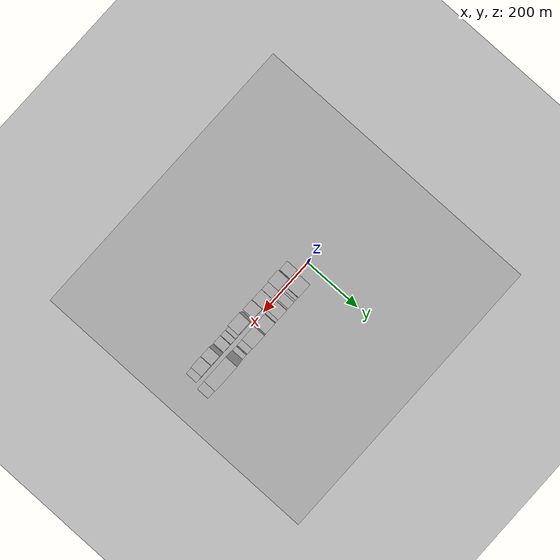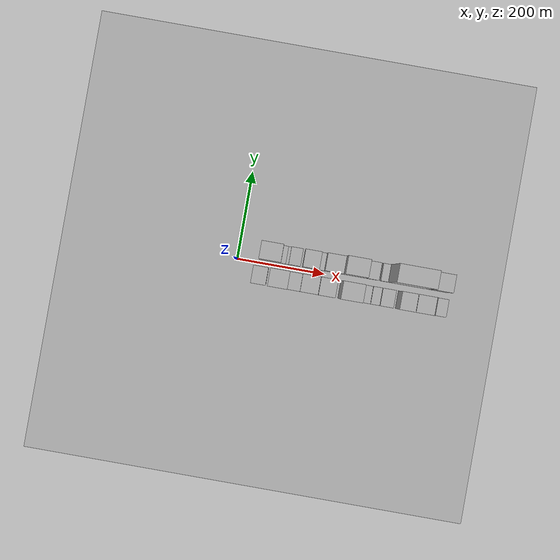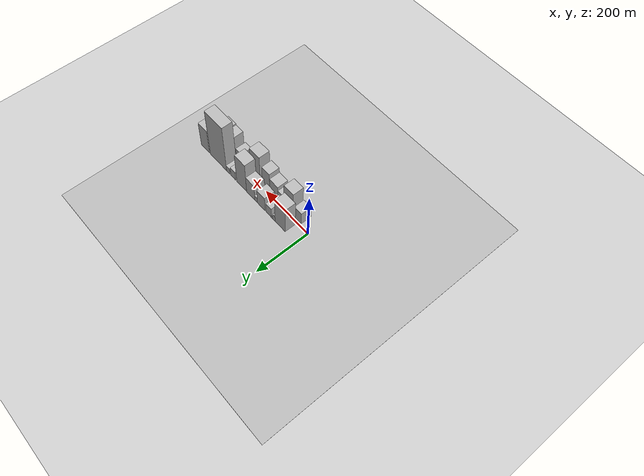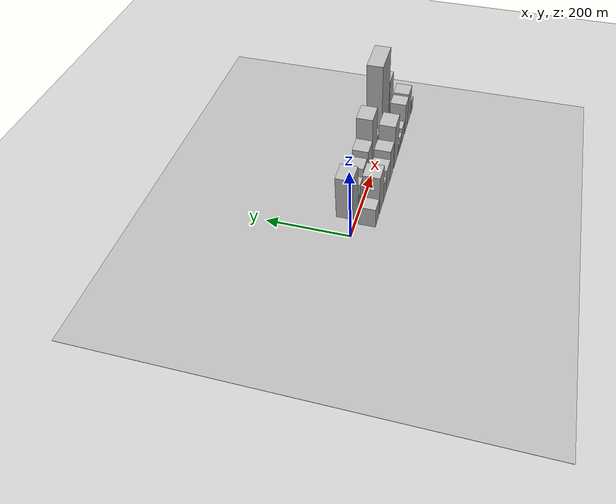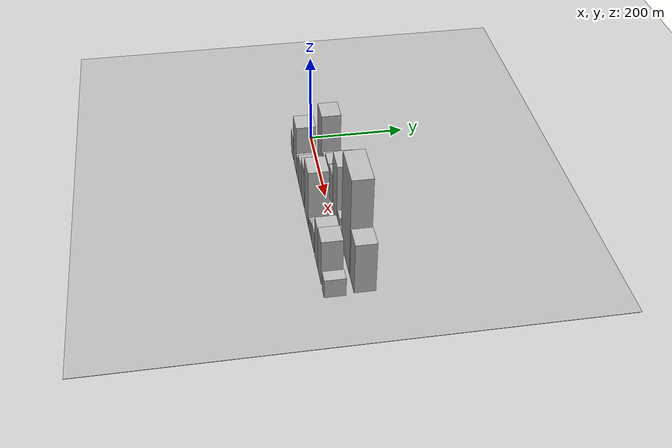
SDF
<?xml version="1.0" encoding="utf-8"?>

<sdf version="1.6">

   <world name="default">

      <gui fullscreen="0">

         <camera name="user_camera">

            <pose>-15 0 4.57585 0 0 0</pose>

            <view_controller>orbit</view_controller>

         </camera>

      </gui>

      <scene>

         <sky>

           <clouds>

             <speed>12</speed>

           </clouds>

         </sky>

         <ambient>0.4 0.4 0.4 1</ambient>

         <background>0.7 0.7 0.7 1</background>

         <shadows>1</shadows>

      </scene>

      <gravity>0 0 -9.8066</gravity>

      <magnetic_field>6e-06 2.3e-05 -4.2e-05</magnetic_field>

      <physics default="0" name="default_physics" type="ode">

         <ode>

            <solver>

               <type>quick</type>

               <iters>10</iters>

               <sor>1.0</sor>

               <use_dynamic_moi_rescaling>0</use_dynamic_moi_rescaling>

            </solver>

            <constraints>

               <cfm>0</cfm>

               <erp>0.2</erp>

               <contact_max_correcting_vel>100</contact_max_correcting_vel>

               <contact_surface_layer>0.001</contact_surface_layer>

            </constraints>

         </ode>

         <max_step_size>0.004</max_step_size>

         <real_time_factor>1</real_time_factor>

         <real_time_update_rate>250</real_time_update_rate>

      </physics>

      <light name="sun" type="directional">

         <cast_shadows>1</cast_shadows>

         <pose>0 0 10 0 0 0</pose>

         <diffuse>0.8 0.8 0.8 1</diffuse>

         <specular>0.2 0.2 0.2 1</specular>

         <attenuation>

            <range>1000</range>

            <constant>0.9</constant>

            <linear>0.01</linear>

            <quadratic>0.001</quadratic>

         </attenuation>

         <direction>-0.5 0.1 -0.9</direction>

      </light>

      <include>

         <name>ground_plane_1</name>

         <uri>model://HANNAS_ground_plane</uri>

         <pose>0 0 0  0 0 0</pose>

      </include>

      <include>

         <name>ground_plane_2</name>

         <uri>model://HANNAS_ground_plane</uri>

         <pose>100 0 0  0 0 0</pose>

      </include>

      <model name="building_1">

         <static>1</static>

         <pose frame="">74.3449 27.5000 0 0.000000 0.000000 1.570796</pose>

         <link name="link">

            <pose frame="">0 0 61.50 0 0 0</pose>

            <collision name="collision">

               <geometry>

                  <box>

                     <size>40.0000 48.6899 123.0000</size>

                  </box>

               </geometry>

               <max_contacts>10</max_contacts>

               <surface>

                  <contact>

                     <ode/>

                  </contact>

                  <bounce/>

                  <friction>

                     <torsional>

                        <ode/>

                     </torsional>

                     <ode/>

                  </friction>

               </surface>

            </collision>

            <visual name="visual">

               <cast_shadows>0</cast_shadows>

               <geometry>

                  <box>

                     <size>40.0000 48.6899 123.0000</size>

                  </box>

               </geometry>

               <material>

                  <script>

                     <uri>model://HANNAS_wall/materials/scripts</uri>

                     <uri>model://HANNAS_wall/materials/textures</uri>

                     <name>vrc/HANNAS_wall</name>

                  </script>

               </material>

            </visual>

            <self_collide>0</self_collide>

            <enable_wind>0</enable_wind>

            <kinematic>0</kinematic>

         </link>

      </model>

      <model name="building_2">

         <static>1</static>

         <pose frame="">104.1551 27.5000 0 0.000000 0.000000 1.570796</pose>

         <link name="link">

            <pose frame="">0 0 13.50 0 0 0</pose>

            <collision name="collision">

               <geometry>

                  <box>

                     <size>40.0000 10.9305 27.0000</size>

                  </box>

               </geometry>

               <max_contacts>10</max_contacts>

               <surface>

                  <contact>

                     <ode/>

                  </contact>

                  <bounce/>

                  <friction>

                     <torsional>

                        <ode/>

                     </torsional>

                     <ode/>

                  </friction>

               </surface>

            </collision>

            <visual name="visual">

               <cast_shadows>0</cast_shadows>

               <geometry>

                  <box>

                     <size>40.0000 10.9305 27.0000</size>

                  </box>

               </geometry>

               <material>

                  <script>

                     <uri>model://HANNAS_wall/materials/scripts</uri>

                     <uri>model://HANNAS_wall/materials/textures</uri>

                     <name>vrc/HANNAS_wall</name>

                  </script>

               </material>

            </visual>

            <self_collide>0</self_collide>

            <enable_wind>0</enable_wind>

            <kinematic>0</kinematic>

         </link>

      </model>

      <model name="building_3">

         <static>1</static>

         <pose frame="">112.9041 27.5000 0 0.000000 0.000000 1.570796</pose>

         <link name="link">

            <pose frame="">0 0 7.50 0 0 0</pose>

            <collision name="collision">

               <geometry>

                  <box>

                     <size>40.0000 6.5675 15.0000</size>

                  </box>

               </geometry>

               <max_contacts>10</max_contacts>

               <surface>

                  <contact>

                     <ode/>

                  </contact>

                  <bounce/>

                  <friction>

                     <torsional>

                        <ode/>

                     </torsional>

                     <ode/>

                  </friction>

               </surface>

            </collision>

            <visual name="visual">

               <cast_shadows>0</cast_shadows>

               <geometry>

                  <box>

                     <size>40.0000 6.5675 15.0000</size>

                  </box>

               </geometry>

               <material>

                  <script>

                     <uri>model://HANNAS_wall/materials/scripts</uri>

                     <uri>model://HANNAS_wall/materials/textures</uri>

                     <name>vrc/HANNAS_wall</name>

                  </script>

               </material>

            </visual>

            <self_collide>0</self_collide>

            <enable_wind>0</enable_wind>

            <kinematic>0</kinematic>

         </link>

      </model>

      <model name="building_4">

         <static>1</static>

         <pose frame="">129.4727 27.5000 0 0.000000 0.000000 1.570796</pose>

         <link name="link">

            <pose frame="">0 0 24.00 0 0 0</pose>

            <collision name="collision">

               <geometry>

                  <box>

                     <size>40.0000 26.5697 48.0000</size>

                  </box>

               </geometry>

               <max_contacts>10</max_contacts>

               <surface>

                  <contact>

                     <ode/>

                  </contact>

                  <bounce/>

                  <friction>

                     <torsional>

                        <ode/>

                     </torsional>

                     <ode/>

                  </friction>

               </surface>

            </collision>

            <visual name="visual">

               <cast_shadows>0</cast_shadows>

               <geometry>

                  <box>

                     <size>40.0000 26.5697 48.0000</size>

                  </box>

               </geometry>

               <material>

                  <script>

                     <uri>model://HANNAS_wall/materials/scripts</uri>

                     <uri>model://HANNAS_wall/materials/textures</uri>

                     <name>vrc/HANNAS_wall</name>

                  </script>

               </material>

            </visual>

            <self_collide>0</self_collide>

            <enable_wind>0</enable_wind>

            <kinematic>0</kinematic>

         </link>

      </model>

      <model name="building_5">

         <static>1</static>

         <pose frame="">166.3005 27.5000 0 0.000000 0.000000 1.570796</pose>

         <link name="link">

            <pose frame="">0 0 34.50 0 0 0</pose>

            <collision name="collision">

               <geometry>

                  <box>

                     <size>40.0000 37.0860 69.0000</size>

                  </box>

               </geometry>

               <max_contacts>10</max_contacts>

               <surface>

                  <contact>

                     <ode/>

                  </contact>

                  <bounce/>

                  <friction>

                     <torsional>

                        <ode/>

                     </torsional>

                     <ode/>

                  </friction>

               </surface>

            </collision>

            <visual name="visual">

               <cast_shadows>0</cast_shadows>

               <geometry>

                  <box>

                     <size>40.0000 37.0860 69.0000</size>

                  </box>

               </geometry>

               <material>

                  <script>

                     <uri>model://HANNAS_wall/materials/scripts</uri>

                     <uri>model://HANNAS_wall/materials/textures</uri>

                     <name>vrc/HANNAS_wall</name>

                  </script>

               </material>

            </visual>

            <self_collide>0</self_collide>

            <enable_wind>0</enable_wind>

            <kinematic>0</kinematic>

         </link>

      </model>

      <model name="building_6">

         <static>1</static>

         <pose frame="">191.0851 27.5000 0 0.000000 0.000000 1.570796</pose>

         <link name="link">

            <pose frame="">0 0 13.50 0 0 0</pose>

            <collision name="collision">

               <geometry>

                  <box>

                     <size>40.0000 12.4831 27.0000</size>

                  </box>

               </geometry>

               <max_contacts>10</max_contacts>

               <surface>

                  <contact>

                     <ode/>

                  </contact>

                  <bounce/>

                  <friction>

                     <torsional>

                        <ode/>

                     </torsional>

                     <ode/>

                  </friction>

               </surface>

            </collision>

            <visual name="visual">

               <cast_shadows>0</cast_shadows>

               <geometry>

                  <box>

                     <size>40.0000 12.4831 27.0000</size>

                  </box>

               </geometry>

               <material>

                  <script>

                     <uri>model://HANNAS_wall/materials/scripts</uri>

                     <uri>model://HANNAS_wall/materials/textures</uri>

                     <name>vrc/HANNAS_wall</name>

                  </script>

               </material>

            </visual>

            <self_collide>0</self_collide>

            <enable_wind>0</enable_wind>

            <kinematic>0</kinematic>

         </link>

      </model>

      <model name="building_7">

         <static>1</static>

         <pose frame="">218.2409 27.5000 0 0.000000 0.000000 1.570796</pose>

         <link name="link">

            <pose frame="">0 0 39.00 0 0 0</pose>

            <collision name="collision">

               <geometry>

                  <box>

                     <size>40.0000 41.8285 78.0000</size>

                  </box>

               </geometry>

               <max_contacts>10</max_contacts>

               <surface>

                  <contact>

                     <ode/>

                  </contact>

                  <bounce/>

                  <friction>

                     <torsional>

                        <ode/>

                     </torsional>

                     <ode/>

                  </friction>

               </surface>

            </collision>

            <visual name="visual">

               <cast_shadows>0</cast_shadows>

               <geometry>

                  <box>

                     <size>40.0000 41.8285 78.0000</size>

                  </box>

               </geometry>

               <material>

                  <script>

                     <uri>model://HANNAS_wall/materials/scripts</uri>

                     <uri>model://HANNAS_wall/materials/textures</uri>

                     <name>vrc/HANNAS_wall</name>

                  </script>

               </material>

            </visual>

            <self_collide>0</self_collide>

            <enable_wind>0</enable_wind>

            <kinematic>0</kinematic>

         </link>

      </model>

      <model name="building_8">

         <static>1</static>

         <pose frame="">264.2187 27.5000 0 0.000000 0.000000 1.570796</pose>

         <link name="link">

            <pose frame="">0 0 70.50 0 0 0</pose>

            <collision name="collision">

               <geometry>

                  <box>

                     <size>40.0000 50.1272 141.0000</size>

                  </box>

               </geometry>

               <max_contacts>10</max_contacts>

               <surface>

                  <contact>

                     <ode/>

                  </contact>

                  <bounce/>

                  <friction>

                     <torsional>

                        <ode/>

                     </torsional>

                     <ode/>

                  </friction>

               </surface>

            </collision>

            <visual name="visual">

               <cast_shadows>0</cast_shadows>

               <geometry>

                  <box>

                     <size>40.0000 50.1272 141.0000</size>

                  </box>

               </geometry>

               <material>

                  <script>

                     <uri>model://HANNAS_wall/materials/scripts</uri>

                     <uri>model://HANNAS_wall/materials/textures</uri>

                     <name>vrc/HANNAS_wall</name>

                  </script>

               </material>

            </visual>

            <self_collide>0</self_collide>

            <enable_wind>0</enable_wind>

            <kinematic>0</kinematic>

         </link>

      </model>

      <model name="building_9">

         <static>1</static>

         <pose frame="">307.8596 27.5000 0 0.000000 0.000000 1.570796</pose>

         <link name="link">

            <pose frame="">0 0 21.00 0 0 0</pose>

            <collision name="collision">

               <geometry>

                  <box>

                     <size>40.0000 25.1546 42.0000</size>

                  </box>

               </geometry>

               <max_contacts>10</max_contacts>

               <surface>

                  <contact>

                     <ode/>

                  </contact>

                  <bounce/>

                  <friction>

                     <torsional>

                        <ode/>

                     </torsional>

                     <ode/>

                  </friction>

               </surface>

            </collision>

            <visual name="visual">

               <cast_shadows>0</cast_shadows>

               <geometry>

                  <box>

                     <size>40.0000 25.1546 42.0000</size>

                  </box>

               </geometry>

               <material>

                  <script>

                     <uri>model://HANNAS_wall/materials/scripts</uri>

                     <uri>model://HANNAS_wall/materials/textures</uri>

                     <name>vrc/HANNAS_wall</name>

                  </script>

               </material>

            </visual>

            <self_collide>0</self_collide>

            <enable_wind>0</enable_wind>

            <kinematic>0</kinematic>

         </link>

      </model>

      <model name="building_10">

         <static>1</static>

         <pose frame="">333.8535 27.5000 0 0.000000 0.000000 1.570796</pose>

         <link name="link">

            <pose frame="">0 0 15.00 0 0 0</pose>

            <collision name="collision">

               <geometry>

                  <box>

                     <size>40.0000 16.8332 30.0000</size>

                  </box>

               </geometry>

               <max_contacts>10</max_contacts>

               <surface>

                  <contact>

                     <ode/>

                  </contact>

                  <bounce/>

                  <friction>

                     <torsional>

                        <ode/>

                     </torsional>

                     <ode/>

                  </friction>

               </surface>

            </collision>

            <visual name="visual">

               <cast_shadows>0</cast_shadows>

               <geometry>

                  <box>

                     <size>40.0000 16.8332 30.0000</size>

                  </box>

               </geometry>

               <material>

                  <script>

                     <uri>model://HANNAS_wall/materials/scripts</uri>

                     <uri>model://HANNAS_wall/materials/textures</uri>

                     <name>vrc/HANNAS_wall</name>

                  </script>

               </material>

            </visual>

            <self_collide>0</self_collide>

            <enable_wind>0</enable_wind>

            <kinematic>0</kinematic>

         </link>

      </model>

      <model name="building_11">

         <static>1</static>

         <pose frame="">385.3249 27.5000 0 0.000000 0.000000 1.570796</pose>

         <link name="link">

            <pose frame="">0 0 109.50 0 0 0</pose>

            <collision name="collision">

               <geometry>

                  <box>

                     <size>40.0000 86.1096 219.0000</size>

                  </box>

               </geometry>

               <max_contacts>10</max_contacts>

               <surface>

                  <contact>

                     <ode/>

                  </contact>

                  <bounce/>

                  <friction>

                     <torsional>

                        <ode/>

                     </torsional>

                     <ode/>

                  </friction>

               </surface>

            </collision>

            <visual name="visual">

               <cast_shadows>0</cast_shadows>

               <geometry>

                  <box>

                     <size>40.0000 86.1096 219.0000</size>

                  </box>

               </geometry>

               <material>

                  <script>

                     <uri>model://HANNAS_wall/materials/scripts</uri>

                     <uri>model://HANNAS_wall/materials/textures</uri>

                     <name>vrc/HANNAS_wall</name>

                  </script>

               </material>

            </visual>

            <self_collide>0</self_collide>

            <enable_wind>0</enable_wind>

            <kinematic>0</kinematic>

         </link>

      </model>

      <model name="building_12">

         <static>1</static>

         <pose frame="">455.4078 27.5000 0 0.000000 0.000000 1.570796</pose>

         <link name="link">

            <pose frame="">0 0 57.00 0 0 0</pose>

            <collision name="collision">

               <geometry>

                  <box>

                     <size>40.0000 44.0561 114.0000</size>

                  </box>

               </geometry>

               <max_contacts>10</max_contacts>

               <surface>

                  <contact>

                     <ode/>

                  </contact>

                  <bounce/>

                  <friction>

                     <torsional>

                        <ode/>

                     </torsional>

                     <ode/>

                  </friction>

               </surface>

            </collision>

            <visual name="visual">

               <cast_shadows>0</cast_shadows>

               <geometry>

                  <box>

                     <size>40.0000 44.0561 114.0000</size>

                  </box>

               </geometry>

               <material>

                  <script>

                     <uri>model://HANNAS_wall/materials/scripts</uri>

                     <uri>model://HANNAS_wall/materials/textures</uri>

                     <name>vrc/HANNAS_wall</name>

                  </script>

               </material>

            </visual>

            <self_collide>0</self_collide>

            <enable_wind>0</enable_wind>

            <kinematic>0</kinematic>

         </link>

      </model>

      <model name="building_13">

         <static>1</static>

         <pose frame="">56.9012 -27.5000 0 0.000000 0.000000 1.570796</pose>

         <link name="link">

            <pose frame="">0 0 28.50 0 0 0</pose>

            <collision name="collision">

               <geometry>

                  <box>

                     <size>40.0000 33.8023 57.0000</size>

                  </box>

               </geometry>

               <max_contacts>10</max_contacts>

               <surface>

                  <contact>

                     <ode/>

                  </contact>

                  <bounce/>

                  <friction>

                     <torsional>

                        <ode/>

                     </torsional>

                     <ode/>

                  </friction>

               </surface>

            </collision>

            <visual name="visual">

               <cast_shadows>0</cast_shadows>

               <geometry>

                  <box>

                     <size>40.0000 33.8023 57.0000</size>

                  </box>

               </geometry>

               <material>

                  <script>

                     <uri>model://HANNAS_wall/materials/scripts</uri>

                     <uri>model://HANNAS_wall/materials/textures</uri>

                     <name>vrc/HANNAS_wall</name>

                  </script>

               </material>

            </visual>

            <self_collide>0</self_collide>

            <enable_wind>0</enable_wind>

            <kinematic>0</kinematic>

         </link>

      </model>

      <model name="building_14">

         <static>1</static>

         <pose frame="">100.4844 -27.5000 0 0.000000 0.000000 1.570796</pose>

         <link name="link">

            <pose frame="">0 0 58.50 0 0 0</pose>

            <collision name="collision">

               <geometry>

                  <box>

                     <size>40.0000 43.3641 117.0000</size>

                  </box>

               </geometry>

               <max_contacts>10</max_contacts>

               <surface>

                  <contact>

                     <ode/>

                  </contact>

                  <bounce/>

                  <friction>

                     <torsional>

                        <ode/>

                     </torsional>

                     <ode/>

                  </friction>

               </surface>

            </collision>

            <visual name="visual">

               <cast_shadows>0</cast_shadows>

               <geometry>

                  <box>

                     <size>40.0000 43.3641 117.0000</size>

                  </box>

               </geometry>

               <material>

                  <script>

                     <uri>model://HANNAS_wall/materials/scripts</uri>

                     <uri>model://HANNAS_wall/materials/textures</uri>

                     <name>vrc/HANNAS_wall</name>

                  </script>

               </material>

            </visual>

            <self_collide>0</self_collide>

            <enable_wind>0</enable_wind>

            <kinematic>0</kinematic>

         </link>

      </model>

      <model name="building_15">

         <static>1</static>

         <pose frame="">136.6754 -27.5000 0 0.000000 0.000000 1.570796</pose>

         <link name="link">

            <pose frame="">0 0 27.00 0 0 0</pose>

            <collision name="collision">

               <geometry>

                  <box>

                     <size>40.0000 29.0179 54.0000</size>

                  </box>

               </geometry>

               <max_contacts>10</max_contacts>

               <surface>

                  <contact>

                     <ode/>

                  </contact>

                  <bounce/>

                  <friction>

                     <torsional>

                        <ode/>

                     </torsional>

                     <ode/>

                  </friction>

               </surface>

            </collision>

            <visual name="visual">

               <cast_shadows>0</cast_shadows>

               <geometry>

                  <box>

                     <size>40.0000 29.0179 54.0000</size>

                  </box>

               </geometry>

               <material>

                  <script>

                     <uri>model://HANNAS_wall/materials/scripts</uri>

                     <uri>model://HANNAS_wall/materials/textures</uri>

                     <name>vrc/HANNAS_wall</name>

                  </script>

               </material>

            </visual>

            <self_collide>0</self_collide>

            <enable_wind>0</enable_wind>

            <kinematic>0</kinematic>

         </link>

      </model>

      <model name="building_16">

         <static>1</static>

         <pose frame="">171.3158 -27.5000 0 0.000000 0.000000 1.570796</pose>

         <link name="link">

            <pose frame="">0 0 36.00 0 0 0</pose>

            <collision name="collision">

               <geometry>

                  <box>

                     <size>40.0000 40.2628 72.0000</size>

                  </box>

               </geometry>

               <max_contacts>10</max_contacts>

               <surface>

                  <contact>

                     <ode/>

                  </contact>

                  <bounce/>

                  <friction>

                     <torsional>

                        <ode/>

                     </torsional>

                     <ode/>

                  </friction>

               </surface>

            </collision>

            <visual name="visual">

               <cast_shadows>0</cast_shadows>

               <geometry>

                  <box>

                     <size>40.0000 40.2628 72.0000</size>

                  </box>

               </geometry>

               <material>

                  <script>

                     <uri>model://HANNAS_wall/materials/scripts</uri>

                     <uri>model://HANNAS_wall/materials/textures</uri>

                     <name>vrc/HANNAS_wall</name>

                  </script>

               </material>

            </visual>

            <self_collide>0</self_collide>

            <enable_wind>0</enable_wind>

            <kinematic>0</kinematic>

         </link>

      </model>

      <model name="building_17">

         <static>1</static>

         <pose frame="">210.0917 -27.5000 0 0.000000 0.000000 1.570796</pose>

         <link name="link">

            <pose frame="">0 0 48.00 0 0 0</pose>

            <collision name="collision">

               <geometry>

                  <box>

                     <size>40.0000 37.2889 96.0000</size>

                  </box>

               </geometry>

               <max_contacts>10</max_contacts>

               <surface>

                  <contact>

                     <ode/>

                  </contact>

                  <bounce/>

                  <friction>

                     <torsional>

                        <ode/>

                     </torsional>

                     <ode/>

                  </friction>

               </surface>

            </collision>

            <visual name="visual">

               <cast_shadows>0</cast_shadows>

               <geometry>

                  <box>

                     <size>40.0000 37.2889 96.0000</size>

                  </box>

               </geometry>

               <material>

                  <script>

                     <uri>model://HANNAS_wall/materials/scripts</uri>

                     <uri>model://HANNAS_wall/materials/textures</uri>

                     <name>vrc/HANNAS_wall</name>

                  </script>

               </material>

            </visual>

            <self_collide>0</self_collide>

            <enable_wind>0</enable_wind>

            <kinematic>0</kinematic>

         </link>

      </model>

      <model name="building_18">

         <static>1</static>

         <pose frame="">263.1101 -27.5000 0 0.000000 0.000000 1.570796</pose>

         <link name="link">

            <pose frame="">0 0 66.00 0 0 0</pose>

            <collision name="collision">

               <geometry>

                  <box>

                     <size>40.0000 48.7480 132.0000</size>

                  </box>

               </geometry>

               <max_contacts>10</max_contacts>

               <surface>

                  <contact>

                     <ode/>

                  </contact>

                  <bounce/>

                  <friction>

                     <torsional>

                        <ode/>

                     </torsional>

                     <ode/>

                  </friction>

               </surface>

            </collision>

            <visual name="visual">

               <cast_shadows>0</cast_shadows>

               <geometry>

                  <box>

                     <size>40.0000 48.7480 132.0000</size>

                  </box>

               </geometry>

               <material>

                  <script>

                     <uri>model://HANNAS_wall/materials/scripts</uri>

                     <uri>model://HANNAS_wall/materials/textures</uri>

                     <name>vrc/HANNAS_wall</name>

                  </script>

               </material>

            </visual>

            <self_collide>0</self_collide>

            <enable_wind>0</enable_wind>

            <kinematic>0</kinematic>

         </link>

      </model>

      <model name="building_19">

         <static>1</static>

         <pose frame="">291.1990 -27.5000 0 0.000000 0.000000 1.570796</pose>

         <link name="link">

            <pose frame="">0 0 7.50 0 0 0</pose>

            <collision name="collision">

               <geometry>

                  <box>

                     <size>40.0000 7.4296 15.0000</size>

                  </box>

               </geometry>

               <max_contacts>10</max_contacts>

               <surface>

                  <contact>

                     <ode/>

                  </contact>

                  <bounce/>

                  <friction>

                     <torsional>

                        <ode/>

                     </torsional>

                     <ode/>

                  </friction>

               </surface>

            </collision>

            <visual name="visual">

               <cast_shadows>0</cast_shadows>

               <geometry>

                  <box>

                     <size>40.0000 7.4296 15.0000</size>

                  </box>

               </geometry>

               <material>

                  <script>

                     <uri>model://HANNAS_wall/materials/scripts</uri>

                     <uri>model://HANNAS_wall/materials/textures</uri>

                     <name>vrc/HANNAS_wall</name>

                  </script>

               </material>

            </visual>

            <self_collide>0</self_collide>

            <enable_wind>0</enable_wind>

            <kinematic>0</kinematic>

         </link>

      </model>

      <model name="building_20">

         <static>1</static>

         <pose frame="">303.1062 -27.5000 0 0.000000 0.000000 1.570796</pose>

         <link name="link">

            <pose frame="">0 0 15.00 0 0 0</pose>

            <collision name="collision">

               <geometry>

                  <box>

                     <size>40.0000 16.3850 30.0000</size>

                  </box>

               </geometry>

               <max_contacts>10</max_contacts>

               <surface>

                  <contact>

                     <ode/>

                  </contact>

                  <bounce/>

                  <friction>

                     <torsional>

                        <ode/>

                     </torsional>

                     <ode/>

                  </friction>

               </surface>

            </collision>

            <visual name="visual">

               <cast_shadows>0</cast_shadows>

               <geometry>

                  <box>

                     <size>40.0000 16.3850 30.0000</size>

                  </box>

               </geometry>

               <material>

                  <script>

                     <uri>model://HANNAS_wall/materials/scripts</uri>

                     <uri>model://HANNAS_wall/materials/textures</uri>

                     <name>vrc/HANNAS_wall</name>

                  </script>

               </material>

            </visual>

            <self_collide>0</self_collide>

            <enable_wind>0</enable_wind>

            <kinematic>0</kinematic>

         </link>

      </model>

      <model name="building_21">

         <static>1</static>

         <pose frame="">321.5206 -27.5000 0 0.000000 0.000000 1.570796</pose>

         <link name="link">

            <pose frame="">0 0 19.50 0 0 0</pose>

            <collision name="collision">

               <geometry>

                  <box>

                     <size>40.0000 20.4437 39.0000</size>

                  </box>

               </geometry>

               <max_contacts>10</max_contacts>

               <surface>

                  <contact>

                     <ode/>

                  </contact>

                  <bounce/>

                  <friction>

                     <torsional>

                        <ode/>

                     </torsional>

                     <ode/>

                  </friction>

               </surface>

            </collision>

            <visual name="visual">

               <cast_shadows>0</cast_shadows>

               <geometry>

                  <box>

                     <size>40.0000 20.4437 39.0000</size>

                  </box>

               </geometry>

               <material>

                  <script>

                     <uri>model://HANNAS_wall/materials/scripts</uri>

                     <uri>model://HANNAS_wall/materials/textures</uri>

                     <name>vrc/HANNAS_wall</name>

                  </script>

               </material>

            </visual>

            <self_collide>0</self_collide>

            <enable_wind>0</enable_wind>

            <kinematic>0</kinematic>

         </link>

      </model>

      <model name="building_22">

         <static>1</static>

         <pose frame="">346.7206 -27.5000 0 0.000000 0.000000 1.570796</pose>

         <link name="link">

            <pose frame="">0 0 25.50 0 0 0</pose>

            <collision name="collision">

               <geometry>

                  <box>

                     <size>40.0000 29.9564 51.0000</size>

                  </box>

               </geometry>

               <max_contacts>10</max_contacts>

               <surface>

                  <contact>

                     <ode/>

                  </contact>

                  <bounce/>

                  <friction>

                     <torsional>

                        <ode/>

                     </torsional>

                     <ode/>

                  </friction>

               </surface>

            </collision>

            <visual name="visual">

               <cast_shadows>0</cast_shadows>

               <geometry>

                  <box>

                     <size>40.0000 29.9564 51.0000</size>

                  </box>

               </geometry>

               <material>

                  <script>

                     <uri>model://HANNAS_wall/materials/scripts</uri>

                     <uri>model://HANNAS_wall/materials/textures</uri>

                     <name>vrc/HANNAS_wall</name>

                  </script>

               </material>

            </visual>

            <self_collide>0</self_collide>

            <enable_wind>0</enable_wind>

            <kinematic>0</kinematic>

         </link>

      </model>

      <model name="building_23">

         <static>1</static>

         <pose frame="">388.5741 -27.5000 0 0.000000 0.000000 1.570796</pose>

         <link name="link">

            <pose frame="">0 0 48.00 0 0 0</pose>

            <collision name="collision">

               <geometry>

                  <box>

                     <size>40.0000 35.7507 96.0000</size>

                  </box>

               </geometry>

               <max_contacts>10</max_contacts>

               <surface>

                  <contact>

                     <ode/>

                  </contact>

                  <bounce/>

                  <friction>

                     <torsional>

                        <ode/>

                     </torsional>

                     <ode/>

                  </friction>

               </surface>

            </collision>

            <visual name="visual">

               <cast_shadows>0</cast_shadows>

               <geometry>

                  <box>

                     <size>40.0000 35.7507 96.0000</size>

                  </box>

               </geometry>

               <material>

                  <script>

                     <uri>model://HANNAS_wall/materials/scripts</uri>

                     <uri>model://HANNAS_wall/materials/textures</uri>

                     <name>vrc/HANNAS_wall</name>

                  </script>

               </material>

            </visual>

            <self_collide>0</self_collide>

            <enable_wind>0</enable_wind>

            <kinematic>0</kinematic>

         </link>

      </model>

      <model name="building_24">

         <static>1</static>

         <pose frame="">426.7436 -27.5000 0 0.000000 0.000000 1.570796</pose>

         <link name="link">

            <pose frame="">0 0 51.00 0 0 0</pose>

            <collision name="collision">

               <geometry>

                  <box>

                     <size>40.0000 40.5882 102.0000</size>

                  </box>

               </geometry>

               <max_contacts>10</max_contacts>

               <surface>

                  <contact>

                     <ode/>

                  </contact>

                  <bounce/>

                  <friction>

                     <torsional>

                        <ode/>

                     </torsional>

                     <ode/>

                  </friction>

               </surface>

            </collision>

            <visual name="visual">

               <cast_shadows>0</cast_shadows>

               <geometry>

                  <box>

                     <size>40.0000 40.5882 102.0000</size>

                  </box>

               </geometry>

               <material>

                  <script>

                     <uri>model://HANNAS_wall/materials/scripts</uri>

                     <uri>model://HANNAS_wall/materials/textures</uri>

                     <name>vrc/HANNAS_wall</name>

                  </script>

               </material>

            </visual>

            <self_collide>0</self_collide>

            <enable_wind>0</enable_wind>

            <kinematic>0</kinematic>

         </link>

      </model>

      <model name="building_25">

         <static>1</static>

         <pose frame="">469.1745 -27.5000 0 0.000000 0.000000 1.570796</pose>

         <link name="link">

            <pose frame="">0 0 21.00 0 0 0</pose>

            <collision name="collision">

               <geometry>

                  <box>

                     <size>40.0000 24.2735 42.0000</size>

                  </box>

               </geometry>

               <max_contacts>10</max_contacts>

               <surface>

                  <contact>

                     <ode/>

                  </contact>

                  <bounce/>

                  <friction>

                     <torsional>

                        <ode/>

                     </torsional>

                     <ode/>

                  </friction>

               </surface>

            </collision>

            <visual name="visual">

               <cast_shadows>0</cast_shadows>

               <geometry>

                  <box>

                     <size>40.0000 24.2735 42.0000</size>

                  </box>

               </geometry>

               <material>

                  <script>

                     <uri>model://HANNAS_wall/materials/scripts</uri>

                     <uri>model://HANNAS_wall/materials/textures</uri>

                     <name>vrc/HANNAS_wall</name>

                  </script>

               </material>

            </visual>

            <self_collide>0</self_collide>

            <enable_wind>0</enable_wind>

            <kinematic>0</kinematic>

         </link>

      </model>

   </world>

</sdf>

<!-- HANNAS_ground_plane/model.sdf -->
<sdf version="1.4">
<model name="HANNAS_ground_plane">
  <static>true</static>
    <link name="link">
      <collision name="collision">
        <geometry>
          <plane>
            <normal>0 0 1</normal>
            <size>1000 1000</size>
          </plane>
        </geometry>
        <surface>
          <friction>
            <ode>
              <mu>100</mu>
              <mu2>50</mu2>
            </ode>
          </friction>
        </surface>
      </collision>
      <visual name="visual">
        <cast_shadows>false</cast_shadows>
        <geometry>
          <plane>
            <normal>0 0 1</normal>
            <size>1000 1000</size>
          </plane>
        </geometry>
        <material>
          <script>
            <uri>model://HANNAS_ground_plane/materials/scripts/HANNAS_ground_plane.material</uri>
	    <uri>model://HANNAS_ground_plane/materials/textures</uri>
            <name>HANNASGroundPlane/Image</name>
          </script>
        </material>
      </visual>
    </link>
  </model>
</sdf>
